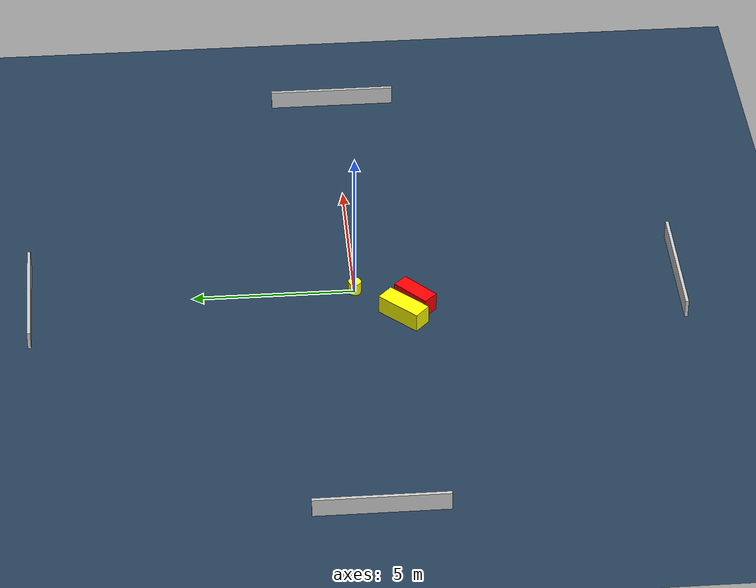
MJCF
<?xml version="1.0" ?>
<mujoco model="generated_environment">
  <option timestep="0.01" integrator="RK4" cone="elliptic"/>
  <default>
    <geom density="1"/>
  </default>
  <asset>
    <texture builtin="gradient" height="3072" name="skybox" rgb1="0.3 0.5 0.7" rgb2="0 0 0" type="skybox" width="512"/>
    <texture builtin="checker" height="300" name="groundplane" rgb1="0.2 0.3 0.4" rgb2="0.1 0.2 0.3" type="2d" width="300"/>
    <material name="groundplane" reflectance="0.2" texrepeat="5 5" texture="groundplane"/>
  </asset>
  <worldbody>
    <light dir="0 0 -1" directional="true" pos="0 0 1.5"/>
    <geom condim="3" friction="0.5 0.005 0.001" material="groundplane" name="floor" pos="0 0 0" size="0 0 0.05" type="plane"/>
    <body name="walls">
      <geom name="wall_1" condim="4" pos="-10.0 0.0 0.3" rgba="0.800000011920929 0.800000011920929 0.800000011920929 1.0" size="0.05 2.0 0.3" type="box"/>
      <geom name="wall_2" condim="4" pos="10.0 0.0 0.3" rgba="0.800000011920929 0.800000011920929 0.800000011920929 1.0" size="0.05 2.0 0.3" type="box"/>
      <geom name="wall_3" condim="4" pos="0.0 -10.0 0.3" rgba="0.800000011920929 0.800000011920929 0.800000011920929 1.0" size="2.0 0.05 0.3" type="box"/>
      <geom name="wall_4" condim="4" pos="0.0 10.0 0.3" rgba="0.800000011920929 0.800000011920929 0.800000011920929 1.0" size="2.0 0.05 0.3" type="box"/>
    </body>
    <body name="robot">
      <joint name="joint_x" type="slide" pos="0 0 0" axis="1 0 0"/>
      <joint name="joint_y" type="slide" pos="0 0 0" axis="0 1 0"/>
      <geom name="robot" type="cylinder" pos="0.0 0.0 0.2" size="0.2 0.2 0.0" mass="5.0" friction="1.0 0.005 0.0001" condim="4" rgba="1.0 1.0 0.0 1.0"/>
    </body>
    <body name="obstacle_1_movable">
      <geom name="obstacle_1_movable" condim="4" pos="-1.3436731134233286 -1.390716324731164 0.3" euler="0 0 316.26464074624585" friction="0.0 0.005 0.001" rgba="1.0 1.0 0.0 1.0" size="0.2956593140769034 0.7413466421931534 0.3" type="box" mass="0.1"/>
      <joint type="free"/>
    </body>
    <body name="obstacle_2_static">
      <geom name="obstacle_2_static" condim="4" pos="-0.7611480169713727 -1.8022967672616395 0.3" euler="0 0 43.02699299784353" friction="0.0 0.005 0.001" rgba="1.0 0.0 0.0 1.0" size="0.6323715738953086 0.2534235901467647 0.3" type="box"/>
    </body>
  </worldbody>
  <actuator>
    <motor name="actuator_x" joint="joint_x" gear="1" ctrlrange="-1 1"/>
    <motor name="actuator_y" joint="joint_y" gear="1" ctrlrange="-1 1"/>
  </actuator>
</mujoco>
